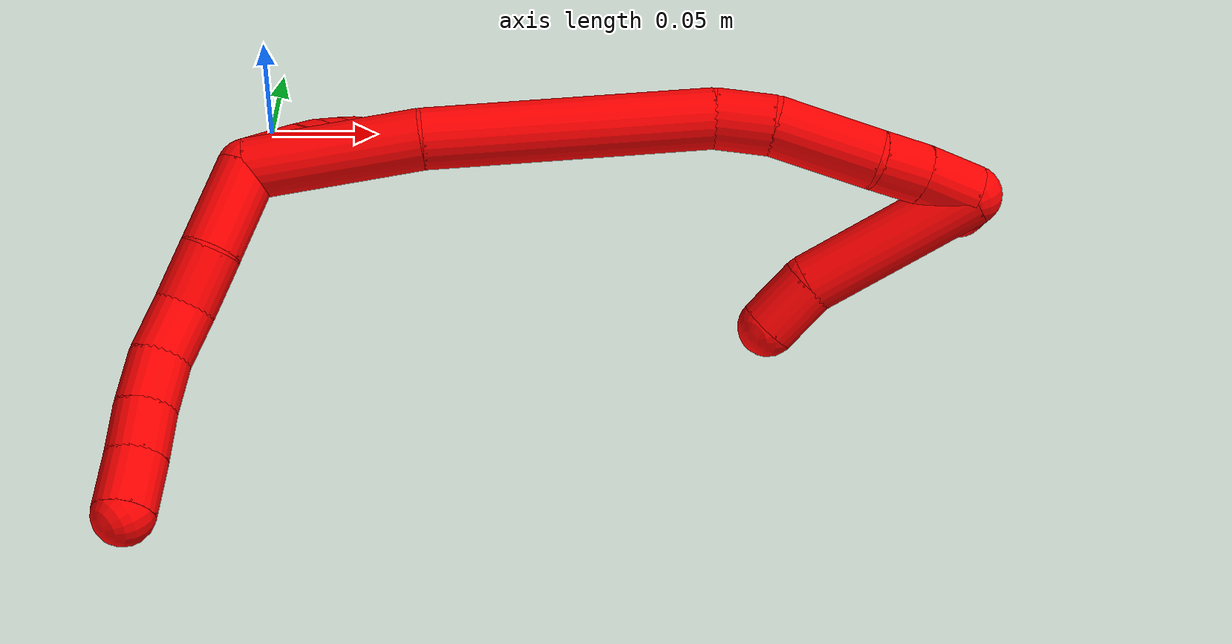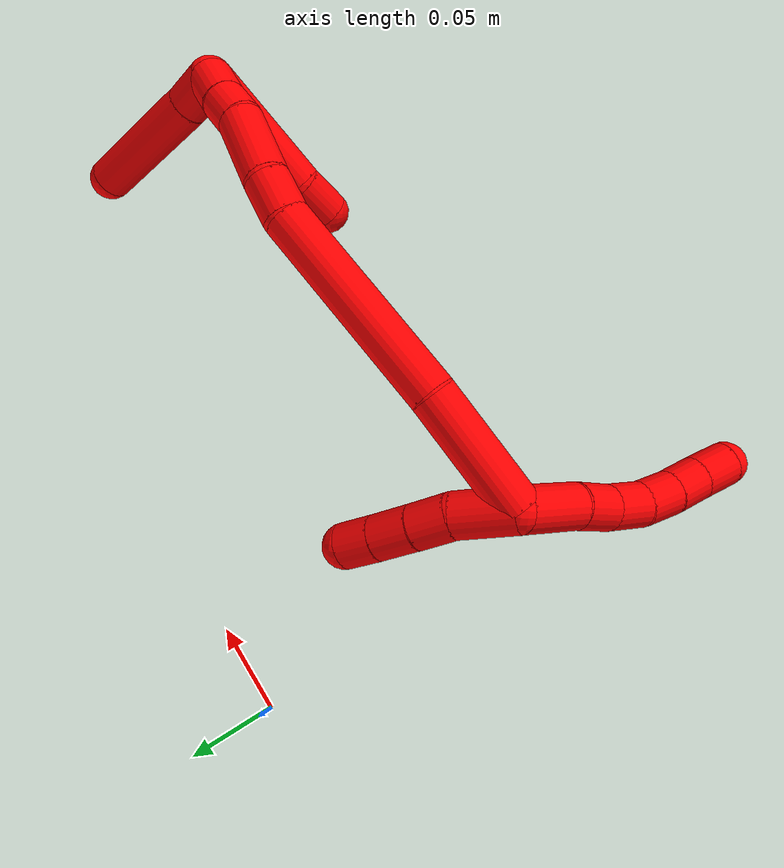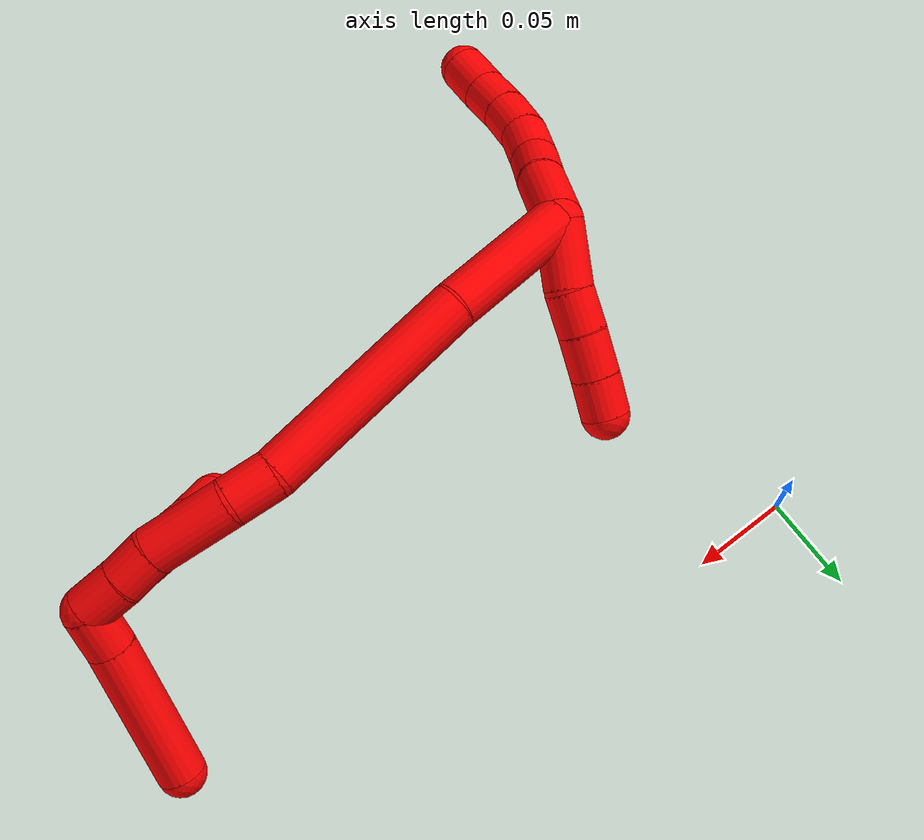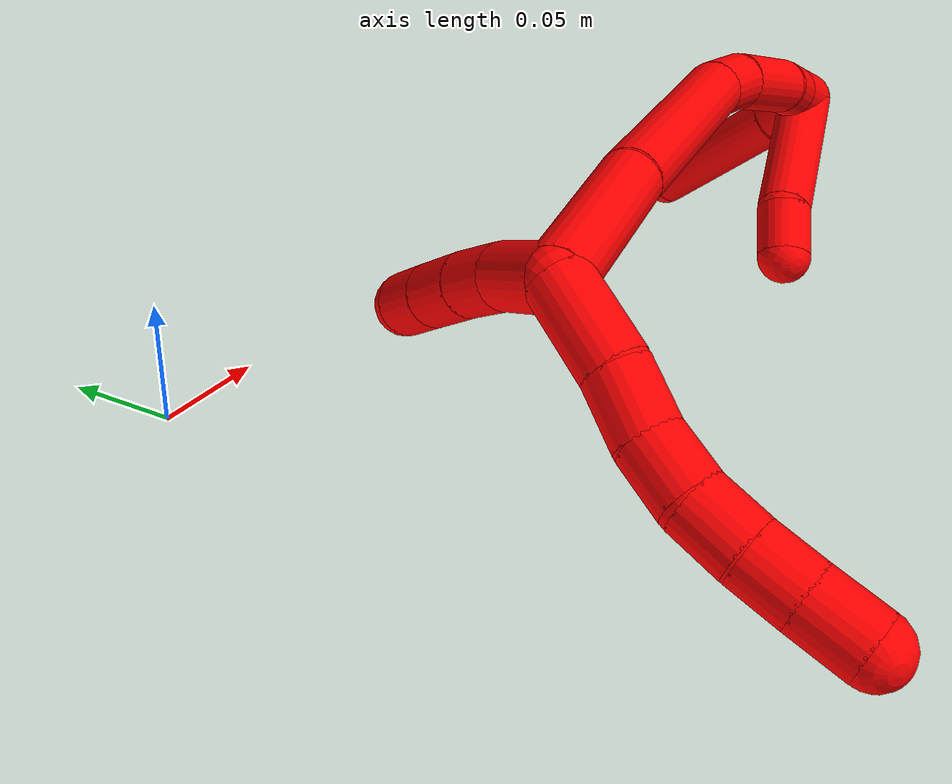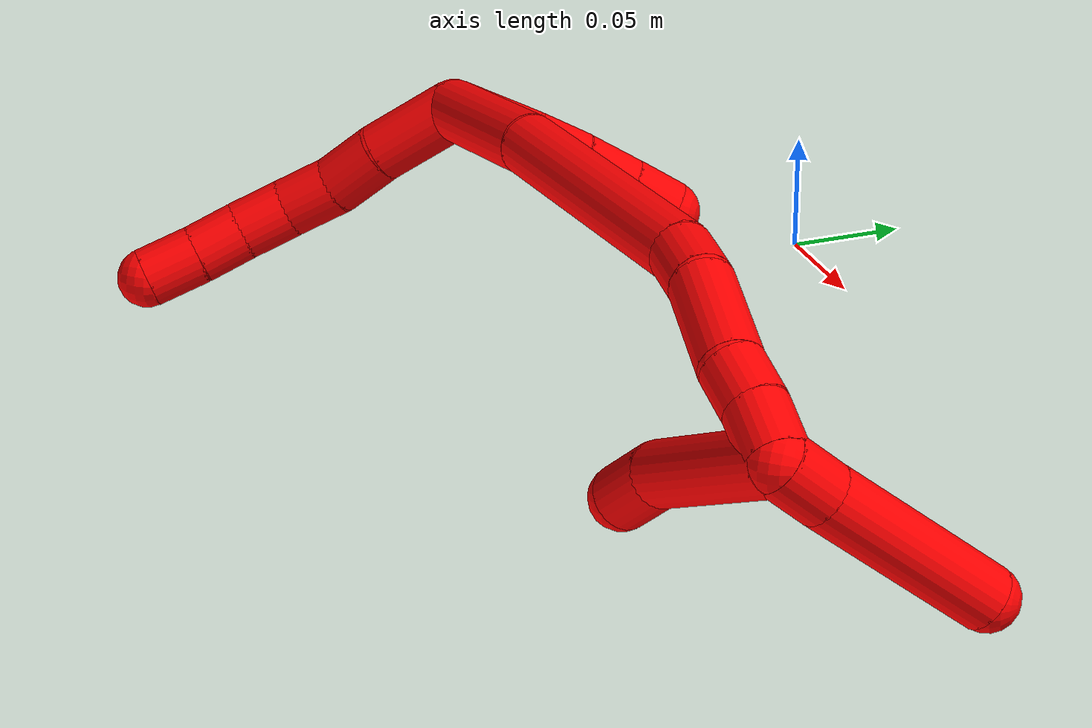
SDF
<sdf version="1.7">
 <world name="default">
  <model name="2">
   <static>0</static>
   <link name="2">
    <collision name="collision-cylinder-e_1_2_8">
     <pose>0.002942 -0.010758 0.014537 0.637085 0.161246 0.053277</pose>
     <geometry><cylinder><radius>0.0125</radius><length>0.036645</length></cylinder></geometry>
     <surface>
      <friction><ode><mu>1.16</mu><mu2>1.16</mu2><slip1>0</slip1><slip2>0</slip2></ode></friction>
      <contact><ode><kp>1e+06</kp><kd>1</kd><max_vel>0</max_vel><min_depth>0.001</min_depth></ode></contact>
     </surface>
    </collision>
    <visual name="visual-cylinder-e_1_2_8">
     <pose>0.002942 -0.010758 0.014537 0.637085 0.161246 0.053277</pose>
     <geometry><cylinder><radius>0.0125</radius><length>0.036645</length></cylinder></geometry>
     <material><ambient>1 0 0 1</ambient></material>
    </visual>
    <collision name="collision-cylinder-e_2_8_9">
     <pose>0.00668 -0.029749 0.03821 0.733475 0.064681 0.024852</pose>
     <geometry><cylinder><radius>0.0125</radius><length>0.024647</length></cylinder></geometry>
     <surface>
      <friction><ode><mu>1.16</mu><mu2>1.16</mu2><slip1>0</slip1><slip2>0</slip2></ode></friction>
      <contact><ode><kp>1e+06</kp><kd>1</kd><max_vel>0</max_vel><min_depth>0.001</min_depth></ode></contact>
     </surface>
    </collision>
    <visual name="visual-cylinder-e_2_8_9">
     <pose>0.00668 -0.029749 0.03821 0.733475 0.064681 0.024852</pose>
     <geometry><cylinder><radius>0.0125</radius><length>0.024647</length></cylinder></geometry>
     <material><ambient>1 0 0 1</ambient></material>
    </visual>
    <collision name="collision-cylinder-e_3_9_10">
     <pose>0.009685 -0.043934 0.056865 0.558778 0.1942 0.055876</pose>
     <geometry><cylinder><radius>0.0125</radius><length>0.022885</length></cylinder></geometry>
     <surface>
      <friction><ode><mu>1.16</mu><mu2>1.16</mu2><slip1>0</slip1><slip2>0</slip2></ode></friction>
      <contact><ode><kp>1e+06</kp><kd>1</kd><max_vel>0</max_vel><min_depth>0.001</min_depth></ode></contact>
     </surface>
    </collision>
    <visual name="visual-cylinder-e_3_9_10">
     <pose>0.009685 -0.043934 0.056865 0.558778 0.1942 0.055876</pose>
     <geometry><cylinder><radius>0.0125</radius><length>0.022885</length></cylinder></geometry>
     <material><ambient>1 0 0 1</ambient></material>
    </visual>
    <collision name="collision-cylinder-e_4_10_11">
     <pose>0.016301 -0.055114 0.074881 0.551605 0.416051 0.119335</pose>
     <geometry><cylinder><radius>0.0125</radius><length>0.021813</length></cylinder></geometry>
     <surface>
      <friction><ode><mu>1.16</mu><mu2>1.16</mu2><slip1>0</slip1><slip2>0</slip2></ode></friction>
      <contact><ode><kp>1e+06</kp><kd>1</kd><max_vel>0</max_vel><min_depth>0.001</min_depth></ode></contact>
     </surface>
    </collision>
    <visual name="visual-cylinder-e_4_10_11">
     <pose>0.016301 -0.055114 0.074881 0.551605 0.416051 0.119335</pose>
     <geometry><cylinder><radius>0.0125</radius><length>0.021813</length></cylinder></geometry>
     <material><ambient>1 0 0 1</ambient></material>
    </visual>
    <collision name="collision-cylinder-e_5_11_12">
     <pose>0.025747 -0.065329 0.091052 0.576313 0.503224 0.152094</pose>
     <geometry><cylinder><radius>0.0125</radius><length>0.020894</length></cylinder></geometry>
     <surface>
      <friction><ode><mu>1.16</mu><mu2>1.16</mu2><slip1>0</slip1><slip2>0</slip2></ode></friction>
      <contact><ode><kp>1e+06</kp><kd>1</kd><max_vel>0</max_vel><min_depth>0.001</min_depth></ode></contact>
     </surface>
    </collision>
    <visual name="visual-cylinder-e_5_11_12">
     <pose>0.025747 -0.065329 0.091052 0.576313 0.503224 0.152094</pose>
     <geometry><cylinder><radius>0.0125</radius><length>0.020894</length></cylinder></geometry>
     <material><ambient>1 0 0 1</ambient></material>
    </visual>
    <collision name="collision-cylinder-e_6_12_6">
     <pose>0.036344 -0.075308 0.107543 0.515062 0.50183 0.134813</pose>
     <geometry><cylinder><radius>0.0125</radius><length>0.023116</length></cylinder></geometry>
     <surface>
      <friction><ode><mu>1.16</mu><mu2>1.16</mu2><slip1>0</slip1><slip2>0</slip2></ode></friction>
      <contact><ode><kp>1e+06</kp><kd>1</kd><max_vel>0</max_vel><min_depth>0.001</min_depth></ode></contact>
     </surface>
    </collision>
    <visual name="visual-cylinder-e_6_12_6">
     <pose>0.036344 -0.075308 0.107543 0.515062 0.50183 0.134813</pose>
     <geometry><cylinder><radius>0.0125</radius><length>0.023116</length></cylinder></geometry>
     <material><ambient>1 0 0 1</ambient></material>
    </visual>
    <collision name="collision-cylinder-e_1_2_13">
     <pose>-0.003698 -0.005161 -0.015906 2.82785 -0.217634 -1.20891</pose>
     <geometry><cylinder><radius>0.0125</radius><length>0.034252</length></cylinder></geometry>
     <surface>
      <friction><ode><mu>1.16</mu><mu2>1.16</mu2><slip1>0</slip1><slip2>0</slip2></ode></friction>
      <contact><ode><kp>1e+06</kp><kd>1</kd><max_vel>0</max_vel><min_depth>0.001</min_depth></ode></contact>
     </surface>
    </collision>
    <visual name="visual-cylinder-e_1_2_13">
     <pose>-0.003698 -0.005161 -0.015906 2.82785 -0.217634 -1.20891</pose>
     <geometry><cylinder><radius>0.0125</radius><length>0.034252</length></cylinder></geometry>
     <material><ambient>1 0 0 1</ambient></material>
    </visual>
    <collision name="collision-cylinder-e_2_13_14">
     <pose>-0.011637 -0.01458 -0.040966 2.7062 -0.397672 -1.47763</pose>
     <geometry><cylinder><radius>0.0125</radius><length>0.021903</length></cylinder></geometry>
     <surface>
      <friction><ode><mu>1.16</mu><mu2>1.16</mu2><slip1>0</slip1><slip2>0</slip2></ode></friction>
      <contact><ode><kp>1e+06</kp><kd>1</kd><max_vel>0</max_vel><min_depth>0.001</min_depth></ode></contact>
     </surface>
    </collision>
    <visual name="visual-cylinder-e_2_13_14">
     <pose>-0.011637 -0.01458 -0.040966 2.7062 -0.397672 -1.47763</pose>
     <geometry><cylinder><radius>0.0125</radius><length>0.021903</length></cylinder></geometry>
     <material><ambient>1 0 0 1</ambient></material>
    </visual>
    <collision name="collision-cylinder-e_3_14_15">
     <pose>-0.020065 -0.02389 -0.059542 2.64942 -0.37336 -1.28954</pose>
     <geometry><cylinder><radius>0.0125</radius><length>0.022961</length></cylinder></geometry>
     <surface>
      <friction><ode><mu>1.16</mu><mu2>1.16</mu2><slip1>0</slip1><slip2>0</slip2></ode></friction>
      <contact><ode><kp>1e+06</kp><kd>1</kd><max_vel>0</max_vel><min_depth>0.001</min_depth></ode></contact>
     </surface>
    </collision>
    <visual name="visual-cylinder-e_3_14_15">
     <pose>-0.020065 -0.02389 -0.059542 2.64942 -0.37336 -1.28954</pose>
     <geometry><cylinder><radius>0.0125</radius><length>0.022961</length></cylinder></geometry>
     <material><ambient>1 0 0 1</ambient></material>
    </visual>
    <collision name="collision-cylinder-e_4_15_5">
     <pose>-0.027811 -0.033655 -0.077574 2.64078 -0.347736 -1.2035</pose>
     <geometry><cylinder><radius>0.0125</radius><length>0.020884</length></cylinder></geometry>
     <surface>
      <friction><ode><mu>1.16</mu><mu2>1.16</mu2><slip1>0</slip1><slip2>0</slip2></ode></friction>
      <contact><ode><kp>1e+06</kp><kd>1</kd><max_vel>0</max_vel><min_depth>0.001</min_depth></ode></contact>
     </surface>
    </collision>
    <visual name="visual-cylinder-e_4_15_5">
     <pose>-0.027811 -0.033655 -0.077574 2.64078 -0.347736 -1.2035</pose>
     <geometry><cylinder><radius>0.0125</radius><length>0.020884</length></cylinder></geometry>
     <material><ambient>1 0 0 1</ambient></material>
    </visual>
    <collision name="collision-cylinder-e_1_2_16">
     <pose>0.024921 0.003089 -0.024859 -3.01795 0.782806 -2.84384</pose>
     <geometry><cylinder><radius>0.0125</radius><length>0.07067</length></cylinder></geometry>
     <surface>
      <friction><ode><mu>1.16</mu><mu2>1.16</mu2><slip1>0</slip1><slip2>0</slip2></ode></friction>
      <contact><ode><kp>1e+06</kp><kd>1</kd><max_vel>0</max_vel><min_depth>0.001</min_depth></ode></contact>
     </surface>
    </collision>
    <visual name="visual-cylinder-e_1_2_16">
     <pose>0.024921 0.003089 -0.024859 -3.01795 0.782806 -2.84384</pose>
     <geometry><cylinder><radius>0.0125</radius><length>0.07067</length></cylinder></geometry>
     <material><ambient>1 0 0 1</ambient></material>
    </visual>
    <collision name="collision-cylinder-e_2_16_17">
     <pose>0.089945 0.003503 -0.092778 3.07953 0.748903 2.98395</pose>
     <geometry><cylinder><radius>0.0125</radius><length>0.117806</length></cylinder></geometry>
     <surface>
      <friction><ode><mu>1.16</mu><mu2>1.16</mu2><slip1>0</slip1><slip2>0</slip2></ode></friction>
      <contact><ode><kp>1e+06</kp><kd>1</kd><max_vel>0</max_vel><min_depth>0.001</min_depth></ode></contact>
     </surface>
    </collision>
    <visual name="visual-cylinder-e_2_16_17">
     <pose>0.089945 0.003503 -0.092778 3.07953 0.748903 2.98395</pose>
     <geometry><cylinder><radius>0.0125</radius><length>0.117806</length></cylinder></geometry>
     <material><ambient>1 0 0 1</ambient></material>
    </visual>
    <collision name="collision-cylinder-e_3_17_18">
     <pose>0.139813 -0.001011 -0.142722 2.88072 0.940443 2.6364</pose>
     <geometry><cylinder><radius>0.0125</radius><length>0.024177</length></cylinder></geometry>
     <surface>
      <friction><ode><mu>1.16</mu><mu2>1.16</mu2><slip1>0</slip1><slip2>0</slip2></ode></friction>
      <contact><ode><kp>1e+06</kp><kd>1</kd><max_vel>0</max_vel><min_depth>0.001</min_depth></ode></contact>
     </surface>
    </collision>
    <visual name="visual-cylinder-e_3_17_18">
     <pose>0.139813 -0.001011 -0.142722 2.88072 0.940443 2.6364</pose>
     <geometry><cylinder><radius>0.0125</radius><length>0.024177</length></cylinder></geometry>
     <material><ambient>1 0 0 1</ambient></material>
    </visual>
    <collision name="collision-cylinder-e_4_18_19">
     <pose>0.166829 -0.010467 -0.160632 2.53694 0.910282 2.00684</pose>
     <geometry><cylinder><radius>0.0125</radius><length>0.043689</length></cylinder></geometry>
     <surface>
      <friction><ode><mu>1.16</mu><mu2>1.16</mu2><slip1>0</slip1><slip2>0</slip2></ode></friction>
      <contact><ode><kp>1e+06</kp><kd>1</kd><max_vel>0</max_vel><min_depth>0.001</min_depth></ode></contact>
     </surface>
    </collision>
    <visual name="visual-cylinder-e_4_18_19">
     <pose>0.166829 -0.010467 -0.160632 2.53694 0.910282 2.00684</pose>
     <geometry><cylinder><radius>0.0125</radius><length>0.043689</length></cylinder></geometry>
     <material><ambient>1 0 0 1</ambient></material>
    </visual>
    <collision name="collision-cylinder-e_5_19_20">
     <pose>0.190629 -0.022393 -0.178167 2.55708 0.698193 1.76014</pose>
     <geometry><cylinder><radius>0.0125</radius><length>0.020379</length></cylinder></geometry>
     <surface>
      <friction><ode><mu>1.16</mu><mu2>1.16</mu2><slip1>0</slip1><slip2>0</slip2></ode></friction>
      <contact><ode><kp>1e+06</kp><kd>1</kd><max_vel>0</max_vel><min_depth>0.001</min_depth></ode></contact>
     </surface>
    </collision>
    <visual name="visual-cylinder-e_5_19_20">
     <pose>0.190629 -0.022393 -0.178167 2.55708 0.698193 1.76014</pose>
     <geometry><cylinder><radius>0.0125</radius><length>0.020379</length></cylinder></geometry>
     <material><ambient>1 0 0 1</ambient></material>
    </visual>
    <collision name="collision-cylinder-e_6_20_1">
     <pose>0.205266 -0.032069 -0.1911 2.4453 0.768047 1.678</pose>
     <geometry><cylinder><radius>0.0125</radius><length>0.023279</length></cylinder></geometry>
     <surface>
      <friction><ode><mu>1.16</mu><mu2>1.16</mu2><slip1>0</slip1><slip2>0</slip2></ode></friction>
      <contact><ode><kp>1e+06</kp><kd>1</kd><max_vel>0</max_vel><min_depth>0.001</min_depth></ode></contact>
     </surface>
    </collision>
    <visual name="visual-cylinder-e_6_20_1">
     <pose>0.205266 -0.032069 -0.1911 2.4453 0.768047 1.678</pose>
     <geometry><cylinder><radius>0.0125</radius><length>0.023279</length></cylinder></geometry>
     <material><ambient>1 0 0 1</ambient></material>
    </visual>
    <collision name="collision-cylinder-e_1_1_21">
     <pose>0.207594 -0.04415 -0.204737 2.39234 -0.528883 -1.20617</pose>
     <geometry><cylinder><radius>0.0125</radius><length>0.022825</length></cylinder></geometry>
     <surface>
      <friction><ode><mu>1.16</mu><mu2>1.16</mu2><slip1>0</slip1><slip2>0</slip2></ode></friction>
      <contact><ode><kp>1e+06</kp><kd>1</kd><max_vel>0</max_vel><min_depth>0.001</min_depth></ode></contact>
     </surface>
    </collision>
    <visual name="visual-cylinder-e_1_1_21">
     <pose>0.207594 -0.04415 -0.204737 2.39234 -0.528883 -1.20617</pose>
     <geometry><cylinder><radius>0.0125</radius><length>0.022825</length></cylinder></geometry>
     <material><ambient>1 0 0 1</ambient></material>
    </visual>
    <collision name="collision-cylinder-e_2_21_4">
     <pose>0.183812 -0.072158 -0.238608 2.46748 -0.485982 -1.23134</pose>
     <geometry><cylinder><radius>0.0125</radius><length>0.077175</length></cylinder></geometry>
     <surface>
      <friction><ode><mu>1.16</mu><mu2>1.16</mu2><slip1>0</slip1><slip2>0</slip2></ode></friction>
      <contact><ode><kp>1e+06</kp><kd>1</kd><max_vel>0</max_vel><min_depth>0.001</min_depth></ode></contact>
     </surface>
    </collision>
    <visual name="visual-cylinder-e_2_21_4">
     <pose>0.183812 -0.072158 -0.238608 2.46748 -0.485982 -1.23134</pose>
     <geometry><cylinder><radius>0.0125</radius><length>0.077175</length></cylinder></geometry>
     <material><ambient>1 0 0 1</ambient></material>
    </visual>
    <collision name="collision-cylinder-e_1_1_22">
     <pose>0.191383 -0.053223 -0.171366 0.542936 -0.62344 -0.178897</pose>
     <geometry><cylinder><radius>0.0125</radius><length>0.075258</length></cylinder></geometry>
     <surface>
      <friction><ode><mu>1.16</mu><mu2>1.16</mu2><slip1>0</slip1><slip2>0</slip2></ode></friction>
      <contact><ode><kp>1e+06</kp><kd>1</kd><max_vel>0</max_vel><min_depth>0.001</min_depth></ode></contact>
     </surface>
    </collision>
    <visual name="visual-cylinder-e_1_1_22">
     <pose>0.191383 -0.053223 -0.171366 0.542936 -0.62344 -0.178897</pose>
     <geometry><cylinder><radius>0.0125</radius><length>0.075258</length></cylinder></geometry>
     <material><ambient>1 0 0 1</ambient></material>
    </visual>
    <collision name="collision-cylinder-e_2_22_3">
     <pose>0.164468 -0.077068 -0.137235 0.790889 -0.411291 -0.173711</pose>
     <geometry><cylinder><radius>0.0125</radius><length>0.024742</length></cylinder></geometry>
     <surface>
      <friction><ode><mu>1.16</mu><mu2>1.16</mu2><slip1>0</slip1><slip2>0</slip2></ode></friction>
      <contact><ode><kp>1e+06</kp><kd>1</kd><max_vel>0</max_vel><min_depth>0.001</min_depth></ode></contact>
     </surface>
    </collision>
    <visual name="visual-cylinder-e_2_22_3">
     <pose>0.164468 -0.077068 -0.137235 0.790889 -0.411291 -0.173711</pose>
     <geometry><cylinder><radius>0.0125</radius><length>0.024742</length></cylinder></geometry>
     <material><ambient>1 0 0 1</ambient></material>
    </visual>
    <collision name="collision-sphere-3">
     <pose>0.159522 -0.08513 -0.129261 0 -0 0</pose>
     <geometry><sphere><radius>0.0125</radius></sphere></geometry>
     <surface>
      <friction><ode><mu>1.16</mu><mu2>1.16</mu2><slip1>0</slip1><slip2>0</slip2></ode></friction>
      <contact><ode><kp>1e+06</kp><kd>1</kd><max_vel>0</max_vel><min_depth>0.001</min_depth></ode></contact>
     </surface>
    </collision>
    <visual name="visual-sphere-3">
     <pose>0.159522 -0.08513 -0.129261 0 -0 0</pose>
     <geometry><sphere><radius>0.0125</radius></sphere></geometry>
     <material><ambient>1 0 0 1</ambient></material>
    </visual>
    <collision name="collision-sphere-22">
     <pose>0.169414 -0.069006 -0.145209 0 -0 0</pose>
     <geometry><sphere><radius>0.0125</radius></sphere></geometry>
     <surface>
      <friction><ode><mu>1.16</mu><mu2>1.16</mu2><slip1>0</slip1><slip2>0</slip2></ode></friction>
      <contact><ode><kp>1e+06</kp><kd>1</kd><max_vel>0</max_vel><min_depth>0.001</min_depth></ode></contact>
     </surface>
    </collision>
    <visual name="visual-sphere-22">
     <pose>0.169414 -0.069006 -0.145209 0 -0 0</pose>
     <geometry><sphere><radius>0.0125</radius></sphere></geometry>
     <material><ambient>1 0 0 1</ambient></material>
    </visual>
    <collision name="collision-sphere-4">
     <pose>0.165789 -0.093456 -0.265265 0 -0 0</pose>
     <geometry><sphere><radius>0.0125</radius></sphere></geometry>
     <surface>
      <friction><ode><mu>1.16</mu><mu2>1.16</mu2><slip1>0</slip1><slip2>0</slip2></ode></friction>
      <contact><ode><kp>1e+06</kp><kd>1</kd><max_vel>0</max_vel><min_depth>0.001</min_depth></ode></contact>
     </surface>
    </collision>
    <visual name="visual-sphere-4">
     <pose>0.165789 -0.093456 -0.265265 0 -0 0</pose>
     <geometry><sphere><radius>0.0125</radius></sphere></geometry>
     <material><ambient>1 0 0 1</ambient></material>
    </visual>
    <collision name="collision-sphere-21">
     <pose>0.201835 -0.050861 -0.211952 0 -0 0</pose>
     <geometry><sphere><radius>0.0125</radius></sphere></geometry>
     <surface>
      <friction><ode><mu>1.16</mu><mu2>1.16</mu2><slip1>0</slip1><slip2>0</slip2></ode></friction>
      <contact><ode><kp>1e+06</kp><kd>1</kd><max_vel>0</max_vel><min_depth>0.001</min_depth></ode></contact>
     </surface>
    </collision>
    <visual name="visual-sphere-21">
     <pose>0.201835 -0.050861 -0.211952 0 -0 0</pose>
     <geometry><sphere><radius>0.0125</radius></sphere></geometry>
     <material><ambient>1 0 0 1</ambient></material>
    </visual>
    <collision name="collision-sphere-1">
     <pose>0.213352 -0.037439 -0.197523 0 -0 0</pose>
     <geometry><sphere><radius>0.0125</radius></sphere></geometry>
     <surface>
      <friction><ode><mu>1.16</mu><mu2>1.16</mu2><slip1>0</slip1><slip2>0</slip2></ode></friction>
      <contact><ode><kp>1e+06</kp><kd>1</kd><max_vel>0</max_vel><min_depth>0.001</min_depth></ode></contact>
     </surface>
    </collision>
    <visual name="visual-sphere-1">
     <pose>0.213352 -0.037439 -0.197523 0 -0 0</pose>
     <geometry><sphere><radius>0.0125</radius></sphere></geometry>
     <material><ambient>1 0 0 1</ambient></material>
    </visual>
    <collision name="collision-sphere-12">
     <pose>0.030785 -0.070316 0.098725 0 -0 0</pose>
     <geometry><sphere><radius>0.0125</radius></sphere></geometry>
     <surface>
      <friction><ode><mu>1.16</mu><mu2>1.16</mu2><slip1>0</slip1><slip2>0</slip2></ode></friction>
      <contact><ode><kp>1e+06</kp><kd>1</kd><max_vel>0</max_vel><min_depth>0.001</min_depth></ode></contact>
     </surface>
    </collision>
    <visual name="visual-sphere-12">
     <pose>0.030785 -0.070316 0.098725 0 -0 0</pose>
     <geometry><sphere><radius>0.0125</radius></sphere></geometry>
     <material><ambient>1 0 0 1</ambient></material>
    </visual>
    <collision name="collision-sphere-11">
     <pose>0.020709 -0.060342 0.083378 0 -0 0</pose>
     <geometry><sphere><radius>0.0125</radius></sphere></geometry>
     <surface>
      <friction><ode><mu>1.16</mu><mu2>1.16</mu2><slip1>0</slip1><slip2>0</slip2></ode></friction>
      <contact><ode><kp>1e+06</kp><kd>1</kd><max_vel>0</max_vel><min_depth>0.001</min_depth></ode></contact>
     </surface>
    </collision>
    <visual name="visual-sphere-11">
     <pose>0.020709 -0.060342 0.083378 0 -0 0</pose>
     <geometry><sphere><radius>0.0125</radius></sphere></geometry>
     <material><ambient>1 0 0 1</ambient></material>
    </visual>
    <collision name="collision-sphere-10">
     <pose>0.011893 -0.049886 0.066385 0 -0 0</pose>
     <geometry><sphere><radius>0.0125</radius></sphere></geometry>
     <surface>
      <friction><ode><mu>1.16</mu><mu2>1.16</mu2><slip1>0</slip1><slip2>0</slip2></ode></friction>
      <contact><ode><kp>1e+06</kp><kd>1</kd><max_vel>0</max_vel><min_depth>0.001</min_depth></ode></contact>
     </surface>
    </collision>
    <visual name="visual-sphere-10">
     <pose>0.011893 -0.049886 0.066385 0 -0 0</pose>
     <geometry><sphere><radius>0.0125</radius></sphere></geometry>
     <material><ambient>1 0 0 1</ambient></material>
    </visual>
    <collision name="collision-sphere-9">
     <pose>0.007476 -0.037981 0.047345 0 -0 0</pose>
     <geometry><sphere><radius>0.0125</radius></sphere></geometry>
     <surface>
      <friction><ode><mu>1.16</mu><mu2>1.16</mu2><slip1>0</slip1><slip2>0</slip2></ode></friction>
      <contact><ode><kp>1e+06</kp><kd>1</kd><max_vel>0</max_vel><min_depth>0.001</min_depth></ode></contact>
     </surface>
    </collision>
    <visual name="visual-sphere-9">
     <pose>0.007476 -0.037981 0.047345 0 -0 0</pose>
     <geometry><sphere><radius>0.0125</radius></sphere></geometry>
     <material><ambient>1 0 0 1</ambient></material>
    </visual>
    <collision name="collision-sphere-2">
     <geometry><sphere><radius>0.0125</radius></sphere></geometry>
     <surface>
      <friction><ode><mu>1.16</mu><mu2>1.16</mu2><slip1>0</slip1><slip2>0</slip2></ode></friction>
      <contact><ode><kp>1e+06</kp><kd>1</kd><max_vel>0</max_vel><min_depth>0.001</min_depth></ode></contact>
     </surface>
    </collision>
    <visual name="visual-sphere-2">
     <geometry><sphere><radius>0.0125</radius></sphere></geometry>
     <material><ambient>1 0 0 1</ambient></material>
    </visual>
    <collision name="collision-sphere-19">
     <pose>0.184079 -0.018086 -0.171658 0 -0 0</pose>
     <geometry><sphere><radius>0.0125</radius></sphere></geometry>
     <surface>
      <friction><ode><mu>1.16</mu><mu2>1.16</mu2><slip1>0</slip1><slip2>0</slip2></ode></friction>
      <contact><ode><kp>1e+06</kp><kd>1</kd><max_vel>0</max_vel><min_depth>0.001</min_depth></ode></contact>
     </surface>
    </collision>
    <visual name="visual-sphere-19">
     <pose>0.184079 -0.018086 -0.171658 0 -0 0</pose>
     <geometry><sphere><radius>0.0125</radius></sphere></geometry>
     <material><ambient>1 0 0 1</ambient></material>
    </visual>
    <collision name="collision-sphere-8">
     <pose>0.005883 -0.021516 0.029075 0 -0 0</pose>
     <geometry><sphere><radius>0.0125</radius></sphere></geometry>
     <surface>
      <friction><ode><mu>1.16</mu><mu2>1.16</mu2><slip1>0</slip1><slip2>0</slip2></ode></friction>
      <contact><ode><kp>1e+06</kp><kd>1</kd><max_vel>0</max_vel><min_depth>0.001</min_depth></ode></contact>
     </surface>
    </collision>
    <visual name="visual-sphere-8">
     <pose>0.005883 -0.021516 0.029075 0 -0 0</pose>
     <geometry><sphere><radius>0.0125</radius></sphere></geometry>
     <material><ambient>1 0 0 1</ambient></material>
    </visual>
    <collision name="collision-sphere-6">
     <pose>0.041904 -0.080299 0.116362 0 -0 0</pose>
     <geometry><sphere><radius>0.0125</radius></sphere></geometry>
     <surface>
      <friction><ode><mu>1.16</mu><mu2>1.16</mu2><slip1>0</slip1><slip2>0</slip2></ode></friction>
      <contact><ode><kp>1e+06</kp><kd>1</kd><max_vel>0</max_vel><min_depth>0.001</min_depth></ode></contact>
     </surface>
    </collision>
    <visual name="visual-sphere-6">
     <pose>0.041904 -0.080299 0.116362 0 -0 0</pose>
     <geometry><sphere><radius>0.0125</radius></sphere></geometry>
     <material><ambient>1 0 0 1</ambient></material>
    </visual>
    <collision name="collision-sphere-13">
     <pose>-0.007396 -0.010322 -0.031812 0 -0 0</pose>
     <geometry><sphere><radius>0.0125</radius></sphere></geometry>
     <surface>
      <friction><ode><mu>1.16</mu><mu2>1.16</mu2><slip1>0</slip1><slip2>0</slip2></ode></friction>
      <contact><ode><kp>1e+06</kp><kd>1</kd><max_vel>0</max_vel><min_depth>0.001</min_depth></ode></contact>
     </surface>
    </collision>
    <visual name="visual-sphere-13">
     <pose>-0.007396 -0.010322 -0.031812 0 -0 0</pose>
     <geometry><sphere><radius>0.0125</radius></sphere></geometry>
     <material><ambient>1 0 0 1</ambient></material>
    </visual>
    <collision name="collision-sphere-14">
     <pose>-0.015878 -0.018839 -0.050121 0 -0 0</pose>
     <geometry><sphere><radius>0.0125</radius></sphere></geometry>
     <surface>
      <friction><ode><mu>1.16</mu><mu2>1.16</mu2><slip1>0</slip1><slip2>0</slip2></ode></friction>
      <contact><ode><kp>1e+06</kp><kd>1</kd><max_vel>0</max_vel><min_depth>0.001</min_depth></ode></contact>
     </surface>
    </collision>
    <visual name="visual-sphere-14">
     <pose>-0.015878 -0.018839 -0.050121 0 -0 0</pose>
     <geometry><sphere><radius>0.0125</radius></sphere></geometry>
     <material><ambient>1 0 0 1</ambient></material>
    </visual>
    <collision name="collision-sphere-15">
     <pose>-0.024253 -0.028941 -0.068963 0 -0 0</pose>
     <geometry><sphere><radius>0.0125</radius></sphere></geometry>
     <surface>
      <friction><ode><mu>1.16</mu><mu2>1.16</mu2><slip1>0</slip1><slip2>0</slip2></ode></friction>
      <contact><ode><kp>1e+06</kp><kd>1</kd><max_vel>0</max_vel><min_depth>0.001</min_depth></ode></contact>
     </surface>
    </collision>
    <visual name="visual-sphere-15">
     <pose>-0.024253 -0.028941 -0.068963 0 -0 0</pose>
     <geometry><sphere><radius>0.0125</radius></sphere></geometry>
     <material><ambient>1 0 0 1</ambient></material>
    </visual>
    <collision name="collision-sphere-5">
     <pose>-0.03137 -0.038368 -0.086186 0 -0 0</pose>
     <geometry><sphere><radius>0.0125</radius></sphere></geometry>
     <surface>
      <friction><ode><mu>1.16</mu><mu2>1.16</mu2><slip1>0</slip1><slip2>0</slip2></ode></friction>
      <contact><ode><kp>1e+06</kp><kd>1</kd><max_vel>0</max_vel><min_depth>0.001</min_depth></ode></contact>
     </surface>
    </collision>
    <visual name="visual-sphere-5">
     <pose>-0.03137 -0.038368 -0.086186 0 -0 0</pose>
     <geometry><sphere><radius>0.0125</radius></sphere></geometry>
     <material><ambient>1 0 0 1</ambient></material>
    </visual>
    <collision name="collision-sphere-16">
     <pose>0.049842 0.006179 -0.049718 0 -0 0</pose>
     <geometry><sphere><radius>0.0125</radius></sphere></geometry>
     <surface>
      <friction><ode><mu>1.16</mu><mu2>1.16</mu2><slip1>0</slip1><slip2>0</slip2></ode></friction>
      <contact><ode><kp>1e+06</kp><kd>1</kd><max_vel>0</max_vel><min_depth>0.001</min_depth></ode></contact>
     </surface>
    </collision>
    <visual name="visual-sphere-16">
     <pose>0.049842 0.006179 -0.049718 0 -0 0</pose>
     <geometry><sphere><radius>0.0125</radius></sphere></geometry>
     <material><ambient>1 0 0 1</ambient></material>
    </visual>
    <collision name="collision-sphere-17">
     <pose>0.130048 0.000827 -0.135837 0 -0 0</pose>
     <geometry><sphere><radius>0.0125</radius></sphere></geometry>
     <surface>
      <friction><ode><mu>1.16</mu><mu2>1.16</mu2><slip1>0</slip1><slip2>0</slip2></ode></friction>
      <contact><ode><kp>1e+06</kp><kd>1</kd><max_vel>0</max_vel><min_depth>0.001</min_depth></ode></contact>
     </surface>
    </collision>
    <visual name="visual-sphere-17">
     <pose>0.130048 0.000827 -0.135837 0 -0 0</pose>
     <geometry><sphere><radius>0.0125</radius></sphere></geometry>
     <material><ambient>1 0 0 1</ambient></material>
    </visual>
    <collision name="collision-sphere-18">
     <pose>0.149579 -0.002848 -0.149606 0 -0 0</pose>
     <geometry><sphere><radius>0.0125</radius></sphere></geometry>
     <surface>
      <friction><ode><mu>1.16</mu><mu2>1.16</mu2><slip1>0</slip1><slip2>0</slip2></ode></friction>
      <contact><ode><kp>1e+06</kp><kd>1</kd><max_vel>0</max_vel><min_depth>0.001</min_depth></ode></contact>
     </surface>
    </collision>
    <visual name="visual-sphere-18">
     <pose>0.149579 -0.002848 -0.149606 0 -0 0</pose>
     <geometry><sphere><radius>0.0125</radius></sphere></geometry>
     <material><ambient>1 0 0 1</ambient></material>
    </visual>
    <collision name="collision-sphere-20">
     <pose>0.197179 -0.0267 -0.184676 0 -0 0</pose>
     <geometry><sphere><radius>0.0125</radius></sphere></geometry>
     <surface>
      <friction><ode><mu>1.16</mu><mu2>1.16</mu2><slip1>0</slip1><slip2>0</slip2></ode></friction>
      <contact><ode><kp>1e+06</kp><kd>1</kd><max_vel>0</max_vel><min_depth>0.001</min_depth></ode></contact>
     </surface>
    </collision>
    <visual name="visual-sphere-20">
     <pose>0.197179 -0.0267 -0.184676 0 -0 0</pose>
     <geometry><sphere><radius>0.0125</radius></sphere></geometry>
     <material><ambient>1 0 0 1</ambient></material>
    </visual>
    <inertial>
     <pose>0.093187 -0.028974 -0.088328 0 -0 0</pose>
     <mass>0.75</mass>
     <inertia>
      <ixx>-8.8e-05</ixx>
      <ixy>0</ixy>
      <ixz>0</ixz>
      <iyy>0.000176</iyy>
      <iyz>0</iyz>
      <izz>-3.8e-05</izz>
     </inertia>
    </inertial>
   </link>
   <pose>0.017384 -0.165276 0.093773 1.54315 -0.10806 -0.692475</pose>
  </model>
 </world>
</sdf>
